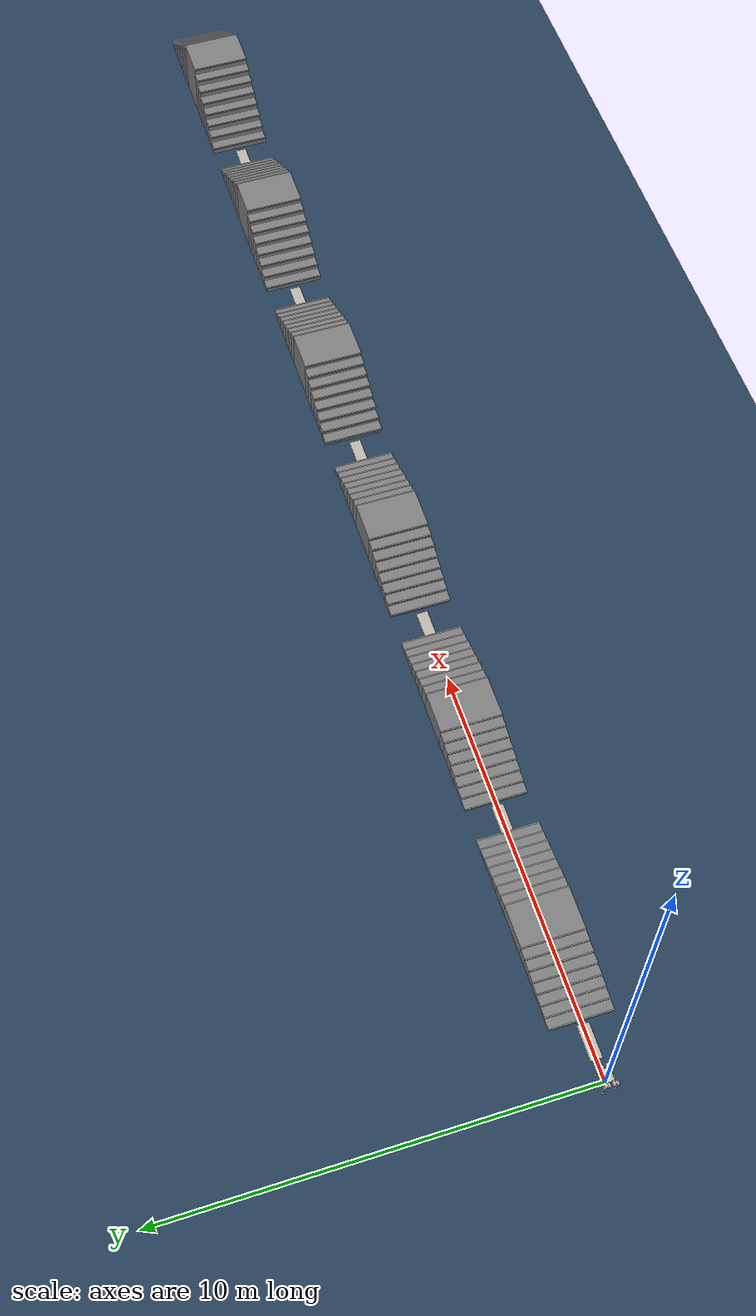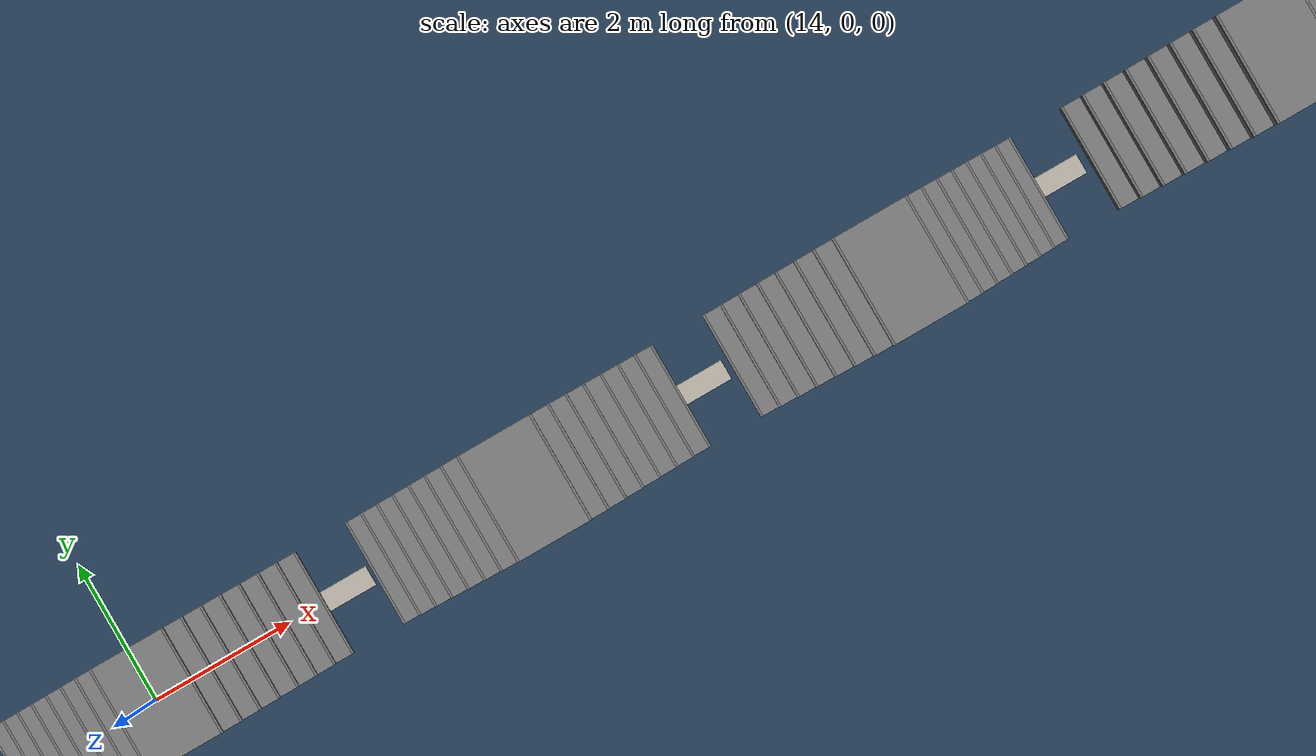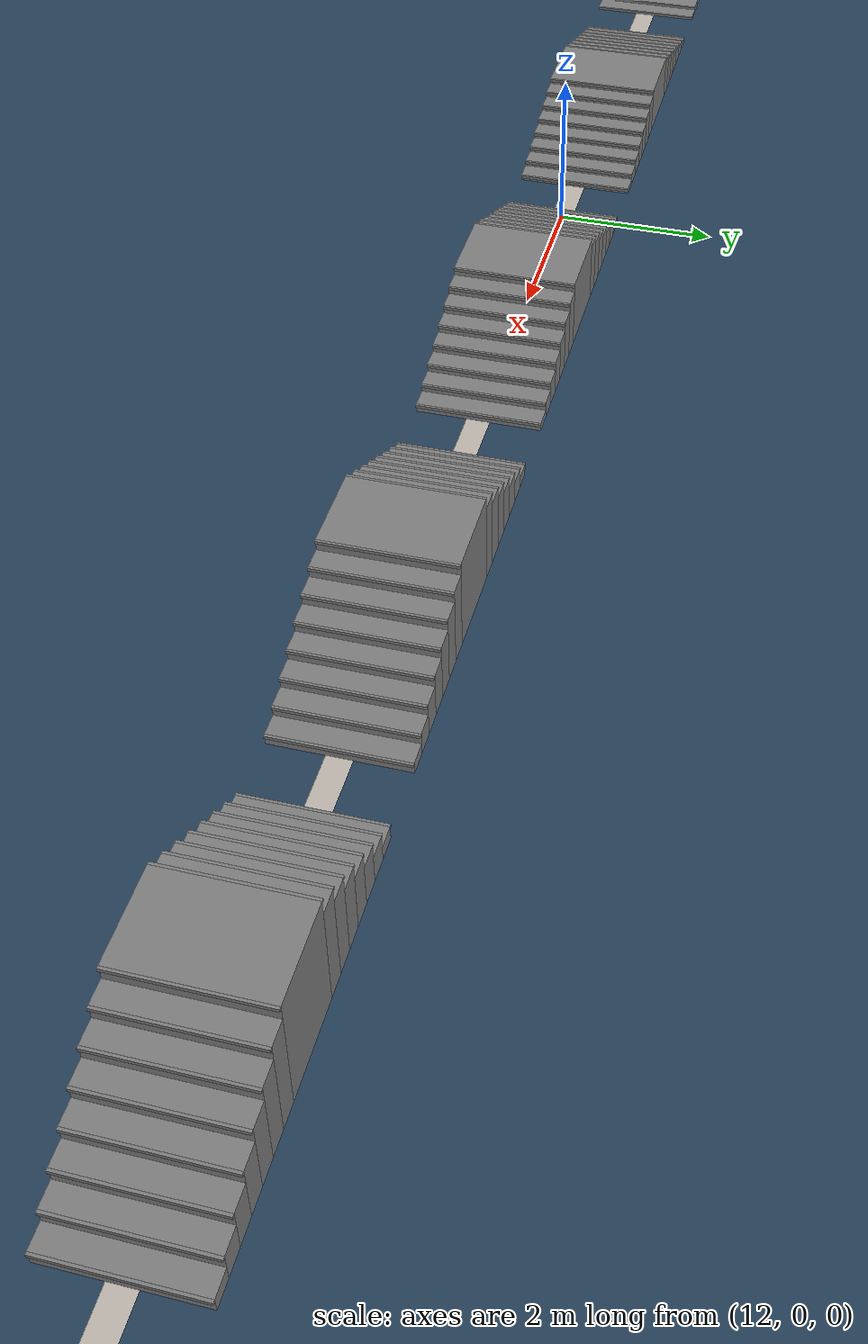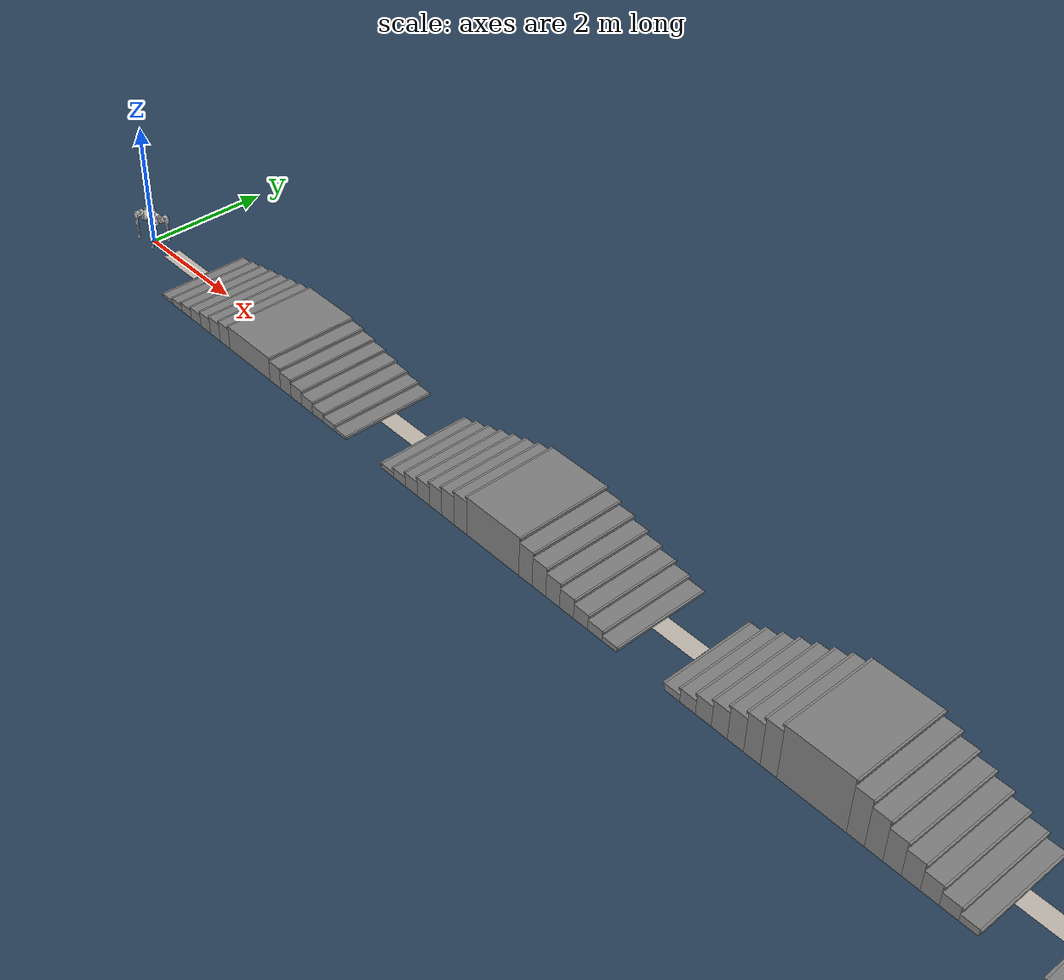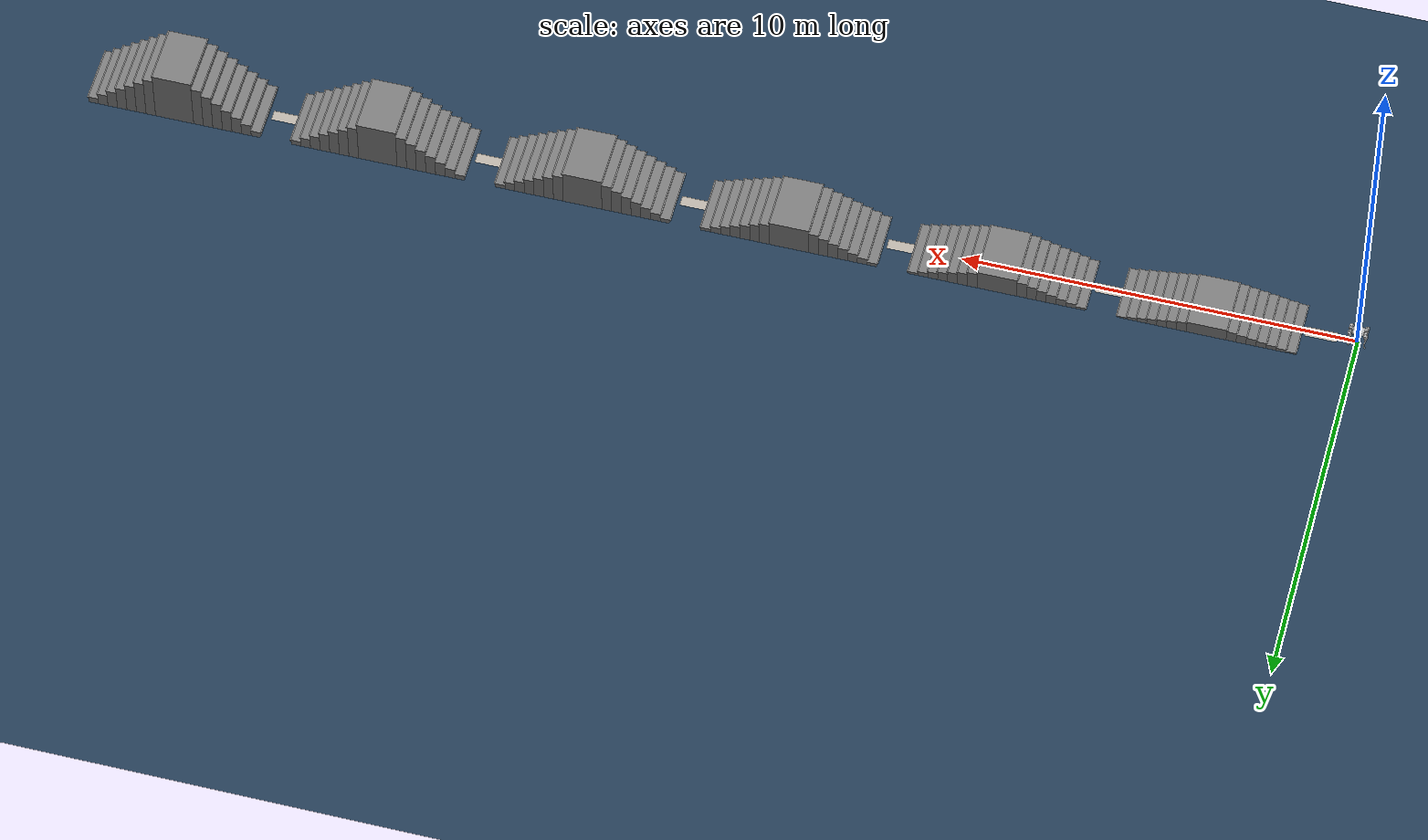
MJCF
<mujoco model="TOE_dog4.5 narrow stairs 25cm">
  <include file="dog.xml" />
  <!-- Eight risers per side, 0.25 m tread depth plus 0.03 m nosing, 0.035 m nosing height. -->
  <statistic center="16.5 0 0.8" extent="18" />
  <visual>
    <headlight diffuse="0.6 0.6 0.6" ambient="0.3 0.3 0.3" specular="0 0 0" />
    <rgba haze="0.15 0.25 0.35 1" />
    <global azimuth="-130" elevation="-20" />
  </visual>
  <asset>
    <texture type="skybox" builtin="gradient" rgb1="0.3 0.5 0.7" rgb2="0 0 0" width="512" height="3072" />
    <texture type="2d" name="groundplane" builtin="checker" mark="edge" rgb1="0.2 0.3 0.4" rgb2="0.1 0.2 0.3" markrgb="0.8 0.8 0.8" width="300" height="300" />
    <material name="groundplane" texture="groundplane" texuniform="true" texrepeat="5 5" reflectance="0.0" />
    <texture name="tex_height_5cm" type="2d" file="./imgs/height_5cm.png" />
    <material name="mat_height_5cm" texture="tex_height_5cm" specular="0" shininess="0" emission="1" texrepeat="1 1" rgba="1 1 1 1" />
    <texture name="tex_height_8cm" type="2d" file="./imgs/height_8cm.png" />
    <material name="mat_height_8cm" texture="tex_height_8cm" specular="0" shininess="0" emission="1" texrepeat="1 1" rgba="1 1 1 1" />
    <texture name="tex_height_11cm" type="2d" file="./imgs/height_11cm.png" />
    <material name="mat_height_11cm" texture="tex_height_11cm" specular="0" shininess="0" emission="1" texrepeat="1 1" rgba="1 1 1 1" />
    <texture name="tex_height_14cm" type="2d" file="./imgs/height_14cm.png" />
    <material name="mat_height_14cm" texture="tex_height_14cm" specular="0" shininess="0" emission="1" texrepeat="1 1" rgba="1 1 1 1" />
    <texture name="tex_height_17cm" type="2d" file="./imgs/height_17cm.png" />
    <material name="mat_height_17cm" texture="tex_height_17cm" specular="0" shininess="0" emission="1" texrepeat="1 1" rgba="1 1 1 1" />
    <texture name="tex_height_20cm" type="2d" file="./imgs/height_20cm.png" />
    <material name="mat_height_20cm" texture="tex_height_20cm" specular="0" shininess="0" emission="1" texrepeat="1 1" rgba="1 1 1 1" />
  </asset>
  <worldbody>
    <light pos="0 0 3" dir="0 0 -1" directional="true" />
    <geom name="floor" size="0 0 0.05" type="plane" material="groundplane" />
    <!-- 5 cm riser group. -->
    <geom name="height_label_5cm" pos="0.9 0 0.002" type="box" size="0.4 0.14 0.0001" contype="0" conaffinity="0" group="1" material="mat_height_5cm" />
    <geom name="stair_5cm_up_1" pos="1.525 0 0.025" type="box" size="0.125 0.75 0.025" />
    <geom name="stair_nosing_5cm_up_1" pos="1.3855 0 0.0325" type="box" size="0.0155 0.75 0.0175" />
    <geom name="stair_5cm_up_2" pos="1.775 0 0.05" type="box" size="0.125 0.75 0.05" />
    <geom name="stair_nosing_5cm_up_2" pos="1.6355 0 0.0825" type="box" size="0.0155 0.75 0.0175" />
    <geom name="stair_5cm_up_3" pos="2.025 0 0.075" type="box" size="0.125 0.75 0.075" />
    <geom name="stair_nosing_5cm_up_3" pos="1.8855 0 0.1325" type="box" size="0.0155 0.75 0.0175" />
    <geom name="stair_5cm_up_4" pos="2.275 0 0.1" type="box" size="0.125 0.75 0.1" />
    <geom name="stair_nosing_5cm_up_4" pos="2.1355 0 0.1825" type="box" size="0.0155 0.75 0.0175" />
    <geom name="stair_5cm_up_5" pos="2.525 0 0.125" type="box" size="0.125 0.75 0.125" />
    <geom name="stair_nosing_5cm_up_5" pos="2.3855 0 0.2325" type="box" size="0.0155 0.75 0.0175" />
    <geom name="stair_5cm_up_6" pos="2.775 0 0.15" type="box" size="0.125 0.75 0.15" />
    <geom name="stair_nosing_5cm_up_6" pos="2.6355 0 0.2825" type="box" size="0.0155 0.75 0.0175" />
    <geom name="stair_5cm_up_7" pos="3.025 0 0.175" type="box" size="0.125 0.75 0.175" />
    <geom name="stair_nosing_5cm_up_7" pos="2.8855 0 0.3325" type="box" size="0.0155 0.75 0.0175" />
    <geom name="stair_5cm_platform" pos="3.65 0 0.2" type="box" size="0.5 0.75 0.2" />
    <geom name="stair_nosing_5cm_platform_up" pos="3.1355 0 0.3825" type="box" size="0.0155 0.75 0.0175" />
    <geom name="stair_nosing_5cm_platform_down" pos="4.1645 0 0.3825" type="box" size="0.0155 0.75 0.0175" />
    <geom name="stair_5cm_down_7" pos="4.275 0 0.175" type="box" size="0.125 0.75 0.175" />
    <geom name="stair_nosing_5cm_down_7" pos="4.4145 0 0.3325" type="box" size="0.0155 0.75 0.0175" />
    <geom name="stair_5cm_down_6" pos="4.525 0 0.15" type="box" size="0.125 0.75 0.15" />
    <geom name="stair_nosing_5cm_down_6" pos="4.6645 0 0.2825" type="box" size="0.0155 0.75 0.0175" />
    <geom name="stair_5cm_down_5" pos="4.775 0 0.125" type="box" size="0.125 0.75 0.125" />
    <geom name="stair_nosing_5cm_down_5" pos="4.9145 0 0.2325" type="box" size="0.0155 0.75 0.0175" />
    <geom name="stair_5cm_down_4" pos="5.025 0 0.1" type="box" size="0.125 0.75 0.1" />
    <geom name="stair_nosing_5cm_down_4" pos="5.1645 0 0.1825" type="box" size="0.0155 0.75 0.0175" />
    <geom name="stair_5cm_down_3" pos="5.275 0 0.075" type="box" size="0.125 0.75 0.075" />
    <geom name="stair_nosing_5cm_down_3" pos="5.4145 0 0.1325" type="box" size="0.0155 0.75 0.0175" />
    <geom name="stair_5cm_down_2" pos="5.525 0 0.05" type="box" size="0.125 0.75 0.05" />
    <geom name="stair_nosing_5cm_down_2" pos="5.6645 0 0.0825" type="box" size="0.0155 0.75 0.0175" />
    <geom name="stair_5cm_down_1" pos="5.775 0 0.025" type="box" size="0.125 0.75 0.025" />
    <geom name="stair_nosing_5cm_down_1" pos="5.9145 0 0.0325" type="box" size="0.0155 0.75 0.0175" />
    <!-- 8 cm riser group. -->
    <geom name="height_label_8cm" pos="6.2 0 0.002" type="box" size="0.4 0.14 0.0001" contype="0" conaffinity="0" group="1" material="mat_height_8cm" />
    <geom name="stair_8cm_up_1" pos="6.825 0 0.04" type="box" size="0.125 0.75 0.04" />
    <geom name="stair_nosing_8cm_up_1" pos="6.6855 0 0.0625" type="box" size="0.0155 0.75 0.0175" />
    <geom name="stair_8cm_up_2" pos="7.075 0 0.08" type="box" size="0.125 0.75 0.08" />
    <geom name="stair_nosing_8cm_up_2" pos="6.9355 0 0.1425" type="box" size="0.0155 0.75 0.0175" />
    <geom name="stair_8cm_up_3" pos="7.325 0 0.12" type="box" size="0.125 0.75 0.12" />
    <geom name="stair_nosing_8cm_up_3" pos="7.1855 0 0.2225" type="box" size="0.0155 0.75 0.0175" />
    <geom name="stair_8cm_up_4" pos="7.575 0 0.16" type="box" size="0.125 0.75 0.16" />
    <geom name="stair_nosing_8cm_up_4" pos="7.4355 0 0.3025" type="box" size="0.0155 0.75 0.0175" />
    <geom name="stair_8cm_up_5" pos="7.825 0 0.2" type="box" size="0.125 0.75 0.2" />
    <geom name="stair_nosing_8cm_up_5" pos="7.6855 0 0.3825" type="box" size="0.0155 0.75 0.0175" />
    <geom name="stair_8cm_up_6" pos="8.075 0 0.24" type="box" size="0.125 0.75 0.24" />
    <geom name="stair_nosing_8cm_up_6" pos="7.9355 0 0.4625" type="box" size="0.0155 0.75 0.0175" />
    <geom name="stair_8cm_up_7" pos="8.325 0 0.28" type="box" size="0.125 0.75 0.28" />
    <geom name="stair_nosing_8cm_up_7" pos="8.1855 0 0.5425" type="box" size="0.0155 0.75 0.0175" />
    <geom name="stair_8cm_platform" pos="8.95 0 0.32" type="box" size="0.5 0.75 0.32" />
    <geom name="stair_nosing_8cm_platform_up" pos="8.4355 0 0.6225" type="box" size="0.0155 0.75 0.0175" />
    <geom name="stair_nosing_8cm_platform_down" pos="9.4645 0 0.6225" type="box" size="0.0155 0.75 0.0175" />
    <geom name="stair_8cm_down_7" pos="9.575 0 0.28" type="box" size="0.125 0.75 0.28" />
    <geom name="stair_nosing_8cm_down_7" pos="9.7145 0 0.5425" type="box" size="0.0155 0.75 0.0175" />
    <geom name="stair_8cm_down_6" pos="9.825 0 0.24" type="box" size="0.125 0.75 0.24" />
    <geom name="stair_nosing_8cm_down_6" pos="9.9645 0 0.4625" type="box" size="0.0155 0.75 0.0175" />
    <geom name="stair_8cm_down_5" pos="10.075 0 0.2" type="box" size="0.125 0.75 0.2" />
    <geom name="stair_nosing_8cm_down_5" pos="10.2145 0 0.3825" type="box" size="0.0155 0.75 0.0175" />
    <geom name="stair_8cm_down_4" pos="10.325 0 0.16" type="box" size="0.125 0.75 0.16" />
    <geom name="stair_nosing_8cm_down_4" pos="10.4645 0 0.3025" type="box" size="0.0155 0.75 0.0175" />
    <geom name="stair_8cm_down_3" pos="10.575 0 0.12" type="box" size="0.125 0.75 0.12" />
    <geom name="stair_nosing_8cm_down_3" pos="10.7145 0 0.2225" type="box" size="0.0155 0.75 0.0175" />
    <geom name="stair_8cm_down_2" pos="10.825 0 0.08" type="box" size="0.125 0.75 0.08" />
    <geom name="stair_nosing_8cm_down_2" pos="10.9645 0 0.1425" type="box" size="0.0155 0.75 0.0175" />
    <geom name="stair_8cm_down_1" pos="11.075 0 0.04" type="box" size="0.125 0.75 0.04" />
    <geom name="stair_nosing_8cm_down_1" pos="11.2145 0 0.0625" type="box" size="0.0155 0.75 0.0175" />
    <!-- 11 cm riser group. -->
    <geom name="height_label_11cm" pos="11.5 0 0.002" type="box" size="0.4 0.14 0.0001" contype="0" conaffinity="0" group="1" material="mat_height_11cm" />
    <geom name="stair_11cm_up_1" pos="12.125 0 0.055" type="box" size="0.125 0.75 0.055" />
    <geom name="stair_nosing_11cm_up_1" pos="11.9855 0 0.0925" type="box" size="0.0155 0.75 0.0175" />
    <geom name="stair_11cm_up_2" pos="12.375 0 0.11" type="box" size="0.125 0.75 0.11" />
    <geom name="stair_nosing_11cm_up_2" pos="12.2355 0 0.2025" type="box" size="0.0155 0.75 0.0175" />
    <geom name="stair_11cm_up_3" pos="12.625 0 0.165" type="box" size="0.125 0.75 0.165" />
    <geom name="stair_nosing_11cm_up_3" pos="12.4855 0 0.3125" type="box" size="0.0155 0.75 0.0175" />
    <geom name="stair_11cm_up_4" pos="12.875 0 0.22" type="box" size="0.125 0.75 0.22" />
    <geom name="stair_nosing_11cm_up_4" pos="12.7355 0 0.4225" type="box" size="0.0155 0.75 0.0175" />
    <geom name="stair_11cm_up_5" pos="13.125 0 0.275" type="box" size="0.125 0.75 0.275" />
    <geom name="stair_nosing_11cm_up_5" pos="12.9855 0 0.5325" type="box" size="0.0155 0.75 0.0175" />
    <geom name="stair_11cm_up_6" pos="13.375 0 0.33" type="box" size="0.125 0.75 0.33" />
    <geom name="stair_nosing_11cm_up_6" pos="13.2355 0 0.6425" type="box" size="0.0155 0.75 0.0175" />
    <geom name="stair_11cm_up_7" pos="13.625 0 0.385" type="box" size="0.125 0.75 0.385" />
    <geom name="stair_nosing_11cm_up_7" pos="13.4855 0 0.7525" type="box" size="0.0155 0.75 0.0175" />
    <geom name="stair_11cm_platform" pos="14.25 0 0.44" type="box" size="0.5 0.75 0.44" />
    <geom name="stair_nosing_11cm_platform_up" pos="13.7355 0 0.8625" type="box" size="0.0155 0.75 0.0175" />
    <geom name="stair_nosing_11cm_platform_down" pos="14.7645 0 0.8625" type="box" size="0.0155 0.75 0.0175" />
    <geom name="stair_11cm_down_7" pos="14.875 0 0.385" type="box" size="0.125 0.75 0.385" />
    <geom name="stair_nosing_11cm_down_7" pos="15.0145 0 0.7525" type="box" size="0.0155 0.75 0.0175" />
    <geom name="stair_11cm_down_6" pos="15.125 0 0.33" type="box" size="0.125 0.75 0.33" />
    <geom name="stair_nosing_11cm_down_6" pos="15.2645 0 0.6425" type="box" size="0.0155 0.75 0.0175" />
    <geom name="stair_11cm_down_5" pos="15.375 0 0.275" type="box" size="0.125 0.75 0.275" />
    <geom name="stair_nosing_11cm_down_5" pos="15.5145 0 0.5325" type="box" size="0.0155 0.75 0.0175" />
    <geom name="stair_11cm_down_4" pos="15.625 0 0.22" type="box" size="0.125 0.75 0.22" />
    <geom name="stair_nosing_11cm_down_4" pos="15.7645 0 0.4225" type="box" size="0.0155 0.75 0.0175" />
    <geom name="stair_11cm_down_3" pos="15.875 0 0.165" type="box" size="0.125 0.75 0.165" />
    <geom name="stair_nosing_11cm_down_3" pos="16.0145 0 0.3125" type="box" size="0.0155 0.75 0.0175" />
    <geom name="stair_11cm_down_2" pos="16.125 0 0.11" type="box" size="0.125 0.75 0.11" />
    <geom name="stair_nosing_11cm_down_2" pos="16.2645 0 0.2025" type="box" size="0.0155 0.75 0.0175" />
    <geom name="stair_11cm_down_1" pos="16.375 0 0.055" type="box" size="0.125 0.75 0.055" />
    <geom name="stair_nosing_11cm_down_1" pos="16.5145 0 0.0925" type="box" size="0.0155 0.75 0.0175" />
    <!-- 14 cm riser group. -->
    <geom name="height_label_14cm" pos="16.8 0 0.002" type="box" size="0.4 0.14 0.0001" contype="0" conaffinity="0" group="1" material="mat_height_14cm" />
    <geom name="stair_14cm_up_1" pos="17.425 0 0.07" type="box" size="0.125 0.75 0.07" />
    <geom name="stair_nosing_14cm_up_1" pos="17.2855 0 0.1225" type="box" size="0.0155 0.75 0.0175" />
    <geom name="stair_14cm_up_2" pos="17.675 0 0.14" type="box" size="0.125 0.75 0.14" />
    <geom name="stair_nosing_14cm_up_2" pos="17.5355 0 0.2625" type="box" size="0.0155 0.75 0.0175" />
    <geom name="stair_14cm_up_3" pos="17.925 0 0.21" type="box" size="0.125 0.75 0.21" />
    <geom name="stair_nosing_14cm_up_3" pos="17.7855 0 0.4025" type="box" size="0.0155 0.75 0.0175" />
    <geom name="stair_14cm_up_4" pos="18.175 0 0.28" type="box" size="0.125 0.75 0.28" />
    <geom name="stair_nosing_14cm_up_4" pos="18.0355 0 0.5425" type="box" size="0.0155 0.75 0.0175" />
    <geom name="stair_14cm_up_5" pos="18.425 0 0.35" type="box" size="0.125 0.75 0.35" />
    <geom name="stair_nosing_14cm_up_5" pos="18.2855 0 0.6825" type="box" size="0.0155 0.75 0.0175" />
    <geom name="stair_14cm_up_6" pos="18.675 0 0.42" type="box" size="0.125 0.75 0.42" />
    <geom name="stair_nosing_14cm_up_6" pos="18.5355 0 0.8225" type="box" size="0.0155 0.75 0.0175" />
    <geom name="stair_14cm_up_7" pos="18.925 0 0.49" type="box" size="0.125 0.75 0.49" />
    <geom name="stair_nosing_14cm_up_7" pos="18.7855 0 0.9625" type="box" size="0.0155 0.75 0.0175" />
    <geom name="stair_14cm_platform" pos="19.55 0 0.56" type="box" size="0.5 0.75 0.56" />
    <geom name="stair_nosing_14cm_platform_up" pos="19.0355 0 1.1025" type="box" size="0.0155 0.75 0.0175" />
    <geom name="stair_nosing_14cm_platform_down" pos="20.0645 0 1.1025" type="box" size="0.0155 0.75 0.0175" />
    <geom name="stair_14cm_down_7" pos="20.175 0 0.49" type="box" size="0.125 0.75 0.49" />
    <geom name="stair_nosing_14cm_down_7" pos="20.3145 0 0.9625" type="box" size="0.0155 0.75 0.0175" />
    <geom name="stair_14cm_down_6" pos="20.425 0 0.42" type="box" size="0.125 0.75 0.42" />
    <geom name="stair_nosing_14cm_down_6" pos="20.5645 0 0.8225" type="box" size="0.0155 0.75 0.0175" />
    <geom name="stair_14cm_down_5" pos="20.675 0 0.35" type="box" size="0.125 0.75 0.35" />
    <geom name="stair_nosing_14cm_down_5" pos="20.8145 0 0.6825" type="box" size="0.0155 0.75 0.0175" />
    <geom name="stair_14cm_down_4" pos="20.925 0 0.28" type="box" size="0.125 0.75 0.28" />
    <geom name="stair_nosing_14cm_down_4" pos="21.0645 0 0.5425" type="box" size="0.0155 0.75 0.0175" />
    <geom name="stair_14cm_down_3" pos="21.175 0 0.21" type="box" size="0.125 0.75 0.21" />
    <geom name="stair_nosing_14cm_down_3" pos="21.3145 0 0.4025" type="box" size="0.0155 0.75 0.0175" />
    <geom name="stair_14cm_down_2" pos="21.425 0 0.14" type="box" size="0.125 0.75 0.14" />
    <geom name="stair_nosing_14cm_down_2" pos="21.5645 0 0.2625" type="box" size="0.0155 0.75 0.0175" />
    <geom name="stair_14cm_down_1" pos="21.675 0 0.07" type="box" size="0.125 0.75 0.07" />
    <geom name="stair_nosing_14cm_down_1" pos="21.8145 0 0.1225" type="box" size="0.0155 0.75 0.0175" />
    <!-- 17 cm riser group. -->
    <geom name="height_label_17cm" pos="22.1 0 0.002" type="box" size="0.4 0.14 0.0001" contype="0" conaffinity="0" group="1" material="mat_height_17cm" />
    <geom name="stair_17cm_up_1" pos="22.725 0 0.085" type="box" size="0.125 0.75 0.085" />
    <geom name="stair_nosing_17cm_up_1" pos="22.5855 0 0.1525" type="box" size="0.0155 0.75 0.0175" />
    <geom name="stair_17cm_up_2" pos="22.975 0 0.17" type="box" size="0.125 0.75 0.17" />
    <geom name="stair_nosing_17cm_up_2" pos="22.8355 0 0.3225" type="box" size="0.0155 0.75 0.0175" />
    <geom name="stair_17cm_up_3" pos="23.225 0 0.255" type="box" size="0.125 0.75 0.255" />
    <geom name="stair_nosing_17cm_up_3" pos="23.0855 0 0.4925" type="box" size="0.0155 0.75 0.0175" />
    <geom name="stair_17cm_up_4" pos="23.475 0 0.34" type="box" size="0.125 0.75 0.34" />
    <geom name="stair_nosing_17cm_up_4" pos="23.3355 0 0.6625" type="box" size="0.0155 0.75 0.0175" />
    <geom name="stair_17cm_up_5" pos="23.725 0 0.425" type="box" size="0.125 0.75 0.425" />
    <geom name="stair_nosing_17cm_up_5" pos="23.5855 0 0.8325" type="box" size="0.0155 0.75 0.0175" />
    <geom name="stair_17cm_up_6" pos="23.975 0 0.51" type="box" size="0.125 0.75 0.51" />
    <geom name="stair_nosing_17cm_up_6" pos="23.8355 0 1.0025" type="box" size="0.0155 0.75 0.0175" />
    <geom name="stair_17cm_up_7" pos="24.225 0 0.595" type="box" size="0.125 0.75 0.595" />
    <geom name="stair_nosing_17cm_up_7" pos="24.0855 0 1.1725" type="box" size="0.0155 0.75 0.0175" />
    <geom name="stair_17cm_platform" pos="24.85 0 0.68" type="box" size="0.5 0.75 0.68" />
    <geom name="stair_nosing_17cm_platform_up" pos="24.3355 0 1.3425" type="box" size="0.0155 0.75 0.0175" />
    <geom name="stair_nosing_17cm_platform_down" pos="25.3645 0 1.3425" type="box" size="0.0155 0.75 0.0175" />
    <geom name="stair_17cm_down_7" pos="25.475 0 0.595" type="box" size="0.125 0.75 0.595" />
    <geom name="stair_nosing_17cm_down_7" pos="25.6145 0 1.1725" type="box" size="0.0155 0.75 0.0175" />
    <geom name="stair_17cm_down_6" pos="25.725 0 0.51" type="box" size="0.125 0.75 0.51" />
    <geom name="stair_nosing_17cm_down_6" pos="25.8645 0 1.0025" type="box" size="0.0155 0.75 0.0175" />
    <geom name="stair_17cm_down_5" pos="25.975 0 0.425" type="box" size="0.125 0.75 0.425" />
    <geom name="stair_nosing_17cm_down_5" pos="26.1145 0 0.8325" type="box" size="0.0155 0.75 0.0175" />
    <geom name="stair_17cm_down_4" pos="26.225 0 0.34" type="box" size="0.125 0.75 0.34" />
    <geom name="stair_nosing_17cm_down_4" pos="26.3645 0 0.6625" type="box" size="0.0155 0.75 0.0175" />
    <geom name="stair_17cm_down_3" pos="26.475 0 0.255" type="box" size="0.125 0.75 0.255" />
    <geom name="stair_nosing_17cm_down_3" pos="26.6145 0 0.4925" type="box" size="0.0155 0.75 0.0175" />
    <geom name="stair_17cm_down_2" pos="26.725 0 0.17" type="box" size="0.125 0.75 0.17" />
    <geom name="stair_nosing_17cm_down_2" pos="26.8645 0 0.3225" type="box" size="0.0155 0.75 0.0175" />
    <geom name="stair_17cm_down_1" pos="26.975 0 0.085" type="box" size="0.125 0.75 0.085" />
    <geom name="stair_nosing_17cm_down_1" pos="27.1145 0 0.1525" type="box" size="0.0155 0.75 0.0175" />
    <!-- 20 cm riser group. -->
    <geom name="height_label_20cm" pos="27.4 0 0.002" type="box" size="0.4 0.14 0.0001" contype="0" conaffinity="0" group="1" material="mat_height_20cm" />
    <geom name="stair_20cm_up_1" pos="28.025 0 0.1" type="box" size="0.125 0.75 0.1" />
    <geom name="stair_nosing_20cm_up_1" pos="27.8855 0 0.1825" type="box" size="0.0155 0.75 0.0175" />
    <geom name="stair_20cm_up_2" pos="28.275 0 0.2" type="box" size="0.125 0.75 0.2" />
    <geom name="stair_nosing_20cm_up_2" pos="28.1355 0 0.3825" type="box" size="0.0155 0.75 0.0175" />
    <geom name="stair_20cm_up_3" pos="28.525 0 0.3" type="box" size="0.125 0.75 0.3" />
    <geom name="stair_nosing_20cm_up_3" pos="28.3855 0 0.5825" type="box" size="0.0155 0.75 0.0175" />
    <geom name="stair_20cm_up_4" pos="28.775 0 0.4" type="box" size="0.125 0.75 0.4" />
    <geom name="stair_nosing_20cm_up_4" pos="28.6355 0 0.7825" type="box" size="0.0155 0.75 0.0175" />
    <geom name="stair_20cm_up_5" pos="29.025 0 0.5" type="box" size="0.125 0.75 0.5" />
    <geom name="stair_nosing_20cm_up_5" pos="28.8855 0 0.9825" type="box" size="0.0155 0.75 0.0175" />
    <geom name="stair_20cm_up_6" pos="29.275 0 0.6" type="box" size="0.125 0.75 0.6" />
    <geom name="stair_nosing_20cm_up_6" pos="29.1355 0 1.1825" type="box" size="0.0155 0.75 0.0175" />
    <geom name="stair_20cm_up_7" pos="29.525 0 0.7" type="box" size="0.125 0.75 0.7" />
    <geom name="stair_nosing_20cm_up_7" pos="29.3855 0 1.3825" type="box" size="0.0155 0.75 0.0175" />
    <geom name="stair_20cm_platform" pos="30.15 0 0.8" type="box" size="0.5 0.75 0.8" />
    <geom name="stair_nosing_20cm_platform_up" pos="29.6355 0 1.5825" type="box" size="0.0155 0.75 0.0175" />
    <geom name="stair_nosing_20cm_platform_down" pos="30.6645 0 1.5825" type="box" size="0.0155 0.75 0.0175" />
    <geom name="stair_20cm_down_7" pos="30.775 0 0.7" type="box" size="0.125 0.75 0.7" />
    <geom name="stair_nosing_20cm_down_7" pos="30.9145 0 1.3825" type="box" size="0.0155 0.75 0.0175" />
    <geom name="stair_20cm_down_6" pos="31.025 0 0.6" type="box" size="0.125 0.75 0.6" />
    <geom name="stair_nosing_20cm_down_6" pos="31.1645 0 1.1825" type="box" size="0.0155 0.75 0.0175" />
    <geom name="stair_20cm_down_5" pos="31.275 0 0.5" type="box" size="0.125 0.75 0.5" />
    <geom name="stair_nosing_20cm_down_5" pos="31.4145 0 0.9825" type="box" size="0.0155 0.75 0.0175" />
    <geom name="stair_20cm_down_4" pos="31.525 0 0.4" type="box" size="0.125 0.75 0.4" />
    <geom name="stair_nosing_20cm_down_4" pos="31.6645 0 0.7825" type="box" size="0.0155 0.75 0.0175" />
    <geom name="stair_20cm_down_3" pos="31.775 0 0.3" type="box" size="0.125 0.75 0.3" />
    <geom name="stair_nosing_20cm_down_3" pos="31.9145 0 0.5825" type="box" size="0.0155 0.75 0.0175" />
    <geom name="stair_20cm_down_2" pos="32.025 0 0.2" type="box" size="0.125 0.75 0.2" />
    <geom name="stair_nosing_20cm_down_2" pos="32.1645 0 0.3825" type="box" size="0.0155 0.75 0.0175" />
    <geom name="stair_20cm_down_1" pos="32.275 0 0.1" type="box" size="0.125 0.75 0.1" />
    <geom name="stair_nosing_20cm_down_1" pos="32.4145 0 0.1825" type="box" size="0.0155 0.75 0.0175" />
  </worldbody>
</mujoco>

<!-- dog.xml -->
<mujoco model="TOE_dog4.5">
  <compiler angle="radian" meshdir="../stl" autolimits="true" />

  <option cone="elliptic" impratio="100" />

  <default>
    <default class="dog">
      <geom friction="0.4" margin="0.001" condim="1"/>
      <joint axis="0 1 0" damping="0.1" armature="0.01" frictionloss="0.2"/>
      <motor ctrlrange="-20 20"/>
      <default class="abduction">
        <joint axis="1 0 0" range="-1 1"/>
      </default>
      <default class="hip">
        <joint range="-1.5 2.5"/>
      </default>
      <default class="knee">
        <joint range="-2.7 -0.8"/>
        <motor ctrlrange="-30 30"/>
      </default>
      <default class="visual">
        <geom type="mesh" contype="0" conaffinity="0" group="1"/>
      </default>
      <default class="collision">
        <geom group="3" contype="1" conaffinity="0"/>
        <default class="foot">
          <geom size="0.022" pos="-0.00129629 0 -0.21118" priority="1" condim="6" friction="0.9 0.02 0.01"/>
        </default>
      </default>
    </default>
  </default>

  <asset>
    <mesh name="base_link" file="base_link.STL"/>
    <mesh name="L_hip" file="L_hip.STL"/>
    <mesh name="L_thigh" file="L_thigh.STL"/>
    <mesh name="L_calf" file="L_calf.STL"/>
    <mesh name="foot" file="foot.STL"/>
    <mesh name="R_hip" file="R_hip.STL"/>
    <mesh name="R_thigh" file="R_thigh.STL"/>
    <mesh name="R_calf" file="R_calf.STL"/>
  </asset>

  <worldbody>
    <body name="base_link" pos="0 0 0.45" childclass="dog">
    <freejoint name="root"/>
    <inertial pos="0.00295211474088308 -0.00192758854859915 -0.0102792040045774" quat="-0.000543471 0.713435 -0.00173769 0.700719"
        mass="5.835083" diaginertia="0.068111 0.056604 0.025133" />
    <geom pos="-0.19 0.1154 -0.09" quat="0.707388 0 0 -0.706825" type="mesh" density="0" rgba="0.752941 0.752941 0.752941 1" mesh="base_link" contype="0" conaffinity="0" group="1"/>

    <geom size="0.135 0.115 0.06" type="box" rgba="1 1 1 1" class="collision"/>

    <site name='imu' size='0.01' pos='0.0 0 0.0'/>

    <body name="FL_hip" pos="0.2 0.05655 0">
      <inertial pos="-0.0070649 0.00658511 0.000124398" quat="0.495949 0.477547 0.517443 0.508169" mass="0.905192" diaginertia="0.00122102 0.00104387 0.000894103"/>
      <joint name="FL_hip_joint" pos="0 0 0" axis="1 0 0" range="-1 1" actuatorfrcrange="-20 20"/>
      <geom type="mesh" density="0" rgba="0.752941 0.752941 0.752941 1" mesh="L_hip" class="visual"/>
      <geom size="0.047 0.045" pos="0 0.05 0" quat="0.707107 0.707107 0 0" type="capsule" rgba="0.752941 0.752941 0.752941 1" class="collision"/>
      <body name="FL_thigh" pos="0 0.09375 0">
        <inertial pos="-0.00135206 -0.0159552 -0.030433" quat="0.699015 0.0668645 -0.0433449 0.710653" mass="1.1875" diaginertia="0.00485748 0.0046312 0.00105732"/>
        <joint name="FL_thigh_joint" pos="0 0 0" axis="0 1 0" range="-1.5 2.5" actuatorfrcrange="-20 20"/>
        <geom type="mesh" density="0" rgba="0.752941 0.752941 0.752941 1" mesh="L_thigh" class="visual"/>
        <geom size="0.055 0.01225 0.017" pos="0 0 -0.1065" quat="0.707107 0 0.707107 0" type="box" rgba="0.752941 0.752941 0.752941 1" class="collision"/>
        <body name="FL_calf" pos="0 0 -0.2">
          <inertial pos="0.006517 -0.000033 -0.106783" quat="1 0 0 0" mass="0.228394" diaginertia="0.00162529 0.00164186 0.00003857"/>
          <joint name="FL_calf_joint" pos="0 0 0" axis="0 1 0" range="-2.7 -0.8" actuatorfrcrange="-30 30"/>
          <geom type="mesh" density="0" rgba="0.752941 0.752941 0.752941 1" mesh="L_calf" class="visual"/>
          <geom size="0.012 0.06" pos="0.008 0 -0.05" quat="0.994493 0 -0.104807 0" type="capsule" rgba="0.752941 0.752941 0.752941 1" class="collision"/>
          <geom size="0.011 0.0325" pos="0.0198362 0 -0.138388" quat="0.999688 0 0.0249974 0" type="capsule" class="collision"/>
          <geom size="0.0155 0.015" pos="0.0134257 0 -0.182499" quat="0.965093 0 0.261909 0" type="capsule" class="collision"/>
          <geom pos="0.00070371 0 -0.21118" quat="1 0 0 0" type="mesh" density="0" rgba="1 1 1 1" mesh="foot" class="visual"/>
          <geom name="FL_foot" size="0.022" pos="-0.00129629 0 -0.21118" rgba="1 1 1 1" class="foot"/>
        </body>
      </body>
    </body>

    <body name="FR_hip" pos="0.2 -0.05655 0">
      <inertial pos="-0.0070649 -0.00658511 -0.000124398" quat="0.517443 0.508169 0.495949 0.477547" mass="0.905192" diaginertia="0.00122102 0.00104387 0.000894103"/>
      <joint name="FR_hip_joint" pos="0 0 0" axis="1 0 0" range="-1 1" actuatorfrcrange="-20 20"/>
      <geom quat="2.14617e-09 4.63268e-05 4.63268e-05 -1" type="mesh" density="0" rgba="0.752941 0.752941 0.752941 1" mesh="R_hip" class="visual"/>
      <geom size="0.047 0.045" pos="0 -0.05 0" quat="0.707107 0.707107 0 0" type="capsule" rgba="0.752941 0.752941 0.752941 1" class="collision"/>
      <body name="FR_thigh" pos="0 -0.09375 0">
        <inertial pos="-0.00109949 0.0159537 -0.0304843" quat="0.710653 -0.0433449 0.0668645 0.699015" mass="1.1875" diaginertia="0.00485748 0.0046312 0.00105732"/>
        <joint name="FR_thigh_joint" pos="0 0 0" axis="0 1 0" range="-1.5 2.5" actuatorfrcrange="-20 20"/>
        <geom type="mesh" density="0" rgba="0.752941 0.752941 0.752941 1" mesh="R_thigh" class="visual"/>
        <geom size="0.055 0.01225 0.017" pos="0 0 -0.1065" quat="0.707107 0 0.707107 0" type="box" rgba="0.752941 0.752941 0.752941 1" class="collision"/>
        <body name="FR_calf" pos="0 0 -0.2">
          <inertial pos="0.006517 -0.000033 -0.106783" quat="1 0 0 0" mass="0.228394" diaginertia="0.00162529 0.00164186 0.00003857"/>
          <joint name="FR_calf_joint" pos="0 0 0" axis="0 1 0" range="-2.7 -0.8" actuatorfrcrange="-30 30"/>
          <geom type="mesh" density="0" rgba="0.752941 0.752941 0.752941 1" mesh="R_calf" class="visual"/>
          <geom size="0.012 0.06" pos="0.008 0 -0.05" quat="0.994493 0 -0.104807 0" type="capsule" rgba="0.752941 0.752941 0.752941 1" class="collision"/>
          <geom size="0.011 0.0325" pos="0.020336 0 -0.1384" quat="0.999688 0 0.0249974 0" type="capsule" class="collision"/>
          <geom size="0.0155 0.015" pos="0.0161382 0 -0.182777" quat="0.971338 0 0.237703 0" type="capsule" class="collision"/>
          <geom pos="0.00070371 0 -0.21118" quat="1 0 0 0" type="mesh" density="0" rgba="1 1 1 1" mesh="foot" class="visual"/>
          <geom name="FR_foot" size="0.022" pos="-0.00129629 0 -0.21118" rgba="1 1 1 1" class="foot"/>
        </body>
      </body>
    </body>

    <body name="RL_hip" pos="-0.2 0.05655 0">
      <inertial pos="0.0070649 0.00658511 -0.000124398" quat="0.508169 0.517443 0.477547 0.495949" mass="0.905192" diaginertia="0.00122102 0.00104387 0.000894103"/>
      <joint name="RL_hip_joint" pos="0 0 0" axis="1 0 0" range="-1 1" actuatorfrcrange="-20 20"/>
      <geom quat="4.63268e-05 0 1 0" type="mesh" density="0" rgba="0.752941 0.752941 0.752941 1" mesh="L_hip" class="visual"/>
      <geom size="0.047 0.045" pos="0 0.05 0" quat="0.707107 0.707107 0 0" type="capsule" rgba="0.752941 0.752941 0.752941 1" class="collision"/>
      <body name="RL_thigh" pos="0 0.09375 0">
        <inertial pos="-0.00135206 -0.0159552 -0.030433" quat="0.699015 0.0668645 -0.0433449 0.710653" mass="1.1875" diaginertia="0.00485748 0.0046312 0.00105732"/>
        <joint name="RL_thigh_joint" pos="0 0 0" axis="0 1 0" range="-1.5 2.5" actuatorfrcrange="-20 20"/>
        <geom type="mesh" density="0" rgba="0.752941 0.752941 0.752941 1" mesh="L_thigh" class="visual"/>
        <geom size="0.055 0.01225 0.017" pos="0 0 -0.1065" quat="0.707107 0 0.707107 0" type="box" rgba="0.752941 0.752941 0.752941 1" class="collision"/>
        <body name="RL_calf" pos="0 0 -0.2">
          <inertial pos="0.006517 -0.000033 -0.106783" quat="1 0 0 0" mass="0.228394" diaginertia="0.00162529 0.00164186 0.00003857"/>
          <joint name="RL_calf_joint" pos="0 0 0" axis="0 1 0" range="-2.7 -0.8" actuatorfrcrange="-30 30"/>
          <geom type="mesh" density="0" rgba="0.752941 0.752941 0.752941 1" mesh="L_calf" class="visual"/>
          <geom size="0.012 0.06" pos="0.008 0 -0.05" quat="0.994493 0 -0.104807 0" type="capsule" rgba="0.752941 0.752941 0.752941 1" class="collision"/>
          <geom size="0.011 0.0325" pos="0.020336 0 -0.1384" quat="0.999688 0 0.0249974 0" type="capsule" class="collision"/>
          <geom size="0.0155 0.015" pos="0.0161382 0 -0.182777" quat="0.971338 0 0.237703 0" type="capsule" class="collision"/>
          <geom pos="0.00070371 0 -0.21118" quat="1 0 0 0" type="mesh" density="0" rgba="1 1 1 1" mesh="foot" class="visual"/>
          <geom name="RL_foot" size="0.022" pos="-0.00129629 0 -0.21118" rgba="1 1 1 1" class="foot"/>
        </body>
      </body>
    </body>

    <body name="RR_hip" pos="-0.2 -0.05655 0">
      <inertial pos="0.0070649 -0.00658511 0.000124398" quat="0.477547 0.495949 0.508169 0.517443" mass="0.905192" diaginertia="0.00122102 0.00104387 0.000894103"/>
      <joint name="RR_hip_joint" pos="0 0 0" axis="1 0 0" range="-1 1" actuatorfrcrange="-20 20"/>
      <geom quat="4.63268e-05 1 0 0" type="mesh" density="0" rgba="0.752941 0.752941 0.752941 1" mesh="R_hip" class="visual"/>
      <geom size="0.047 0.045" pos="0 -0.05 0" quat="0.707107 0.707107 0 0" type="capsule" rgba="0.752941 0.752941 0.752941 1" class="collision"/>
      <body name="RR_thigh" pos="0 -0.09375 0">
        <inertial pos="-0.00109949 0.0159537 -0.0304843" quat="0.710653 -0.0433449 0.0668645 0.699015" mass="1.1875" diaginertia="0.00485748 0.0046312 0.00105732"/>
        <joint name="RR_thigh_joint" pos="0 0 0" axis="0 1 0" range="-1.5 2.5" actuatorfrcrange="-20 20"/>
        <geom type="mesh" density="0" rgba="0.752941 0.752941 0.752941 1" mesh="R_thigh" class="visual"/>
        <geom size="0.055 0.01225 0.017" pos="0 0 -0.1065" quat="0.707107 0 0.707107 0" type="box" rgba="0.752941 0.752941 0.752941 1" class="collision"/>
        <body name="RR_calf" pos="0 0 -0.2">
          <inertial pos="0.006517 -0.000033 -0.106783" quat="1 0 0 0" mass="0.228394" diaginertia="0.00162529 0.00164186 0.00003857"/>
          <joint name="RR_calf_joint" pos="0 0 0" axis="0 1 0" range="-2.7 -0.8" actuatorfrcrange="-30 30"/>
          <geom type="mesh" density="0" rgba="0.752941 0.752941 0.752941 1" mesh="R_calf" class="visual"/>
          <geom size="0.012 0.06" pos="0.008 0 -0.05" quat="0.994493 0 -0.104807 0" type="capsule" rgba="0.752941 0.752941 0.752941 1" class="collision"/>
          <geom size="0.011 0.0325" pos="0.020336 0 -0.1384" quat="0.999688 0 0.0249974 0" type="capsule" class="collision"/>
          <geom size="0.0155 0.015" pos="0.0161382 0 -0.182777" quat="0.971338 0 0.237703 0" type="capsule" class="collision"/>
          <geom pos="0.00070371 0 -0.21118" quat="1 0 0 0" type="mesh" density="0" rgba="1 1 1 1" mesh="foot" class="visual"/>
          <geom name="RR_foot" size="0.022" pos="-0.00129629 0 -0.21118" rgba="1 1 1 1" class="foot"/>
        </body>
      </body>
    </body>

    </body>
  </worldbody>

  <actuator>
    <motor name="FL_hip_joint" joint="FL_hip_joint" gear="1" ctrllimited="true" ctrlrange="-20 20"/>
    <motor name="FL_thigh_joint" joint="FL_thigh_joint" gear="1" ctrllimited="true" ctrlrange="-20 20"/>
    <motor name="FL_calf_joint" joint="FL_calf_joint" gear="1" ctrllimited="true" ctrlrange="-30 30"/>

    <motor name="FR_hip_joint" joint="FR_hip_joint" gear="1" ctrllimited="true" ctrlrange="-20 20"/>
    <motor name="FR_thigh_joint" joint="FR_thigh_joint" gear="1" ctrllimited="true" ctrlrange="-20 20"/>
    <motor name="FR_calf_joint" joint="FR_calf_joint" gear="1" ctrllimited="true" ctrlrange="-30 30"/>

    <motor name="RL_hip_joint" joint="RL_hip_joint" gear="1" ctrllimited="true" ctrlrange="-20 20"/>
    <motor name="RL_thigh_joint" joint="RL_thigh_joint" gear="1" ctrllimited="true" ctrlrange="-20 20"/>
    <motor name="RL_calf_joint" joint="RL_calf_joint" gear="1" ctrllimited="true" ctrlrange="-30 30"/>

    <motor name="RR_hip_joint" joint="RR_hip_joint" gear="1" ctrllimited="true" ctrlrange="-20 20"/>
    <motor name="RR_thigh_joint" joint="RR_thigh_joint" gear="1" ctrllimited="true" ctrlrange="-20 20"/>
    <motor name="RR_calf_joint" joint="RR_calf_joint" gear="1" ctrllimited="true" ctrlrange="-30 30"/>
  </actuator>

  <sensor>
    <jointpos name="FL_hip_pos" joint="FL_hip_joint" />
    <jointpos name="FL_thigh_pos" joint="FL_thigh_joint" />
    <jointpos name="FL_calf_pos" joint="FL_calf_joint" />
    <jointpos name="FR_hip_pos" joint="FR_hip_joint" />
    <jointpos name="FR_thigh_pos" joint="FR_thigh_joint" />
    <jointpos name="FR_calf_pos" joint="FR_calf_joint" />
    <jointpos name="RL_hip_pos" joint="RL_hip_joint" />
    <jointpos name="RL_thigh_pos" joint="RL_thigh_joint" />
    <jointpos name="RL_calf_pos" joint="RL_calf_joint" />
    <jointpos name="RR_hip_pos" joint="RR_hip_joint" />
    <jointpos name="RR_thigh_pos" joint="RR_thigh_joint" />
    <jointpos name="RR_calf_pos" joint="RR_calf_joint" />

    <jointvel name="FL_hip_vel" joint="FL_hip_joint" />
    <jointvel name="FL_thigh_vel" joint="FL_thigh_joint" />
    <jointvel name="FL_calf_vel" joint="FL_calf_joint" />
    <jointvel name="FR_hip_vel" joint="FR_hip_joint" />
    <jointvel name="FR_thigh_vel" joint="FR_thigh_joint" />
    <jointvel name="FR_calf_vel" joint="FR_calf_joint" />
    <jointvel name="RL_hip_vel" joint="RL_hip_joint" />
    <jointvel name="RL_thigh_vel" joint="RL_thigh_joint" />
    <jointvel name="RL_calf_vel" joint="RL_calf_joint" />
    <jointvel name="RR_hip_vel" joint="RR_hip_joint" />
    <jointvel name="RR_thigh_vel" joint="RR_thigh_joint" />
    <jointvel name="RR_calf_vel" joint="RR_calf_joint" />

    <jointactuatorfrc name="FL_hip_torque" joint="FL_hip_joint" noise="0.01" />
    <jointactuatorfrc name="FL_thigh_torque" joint="FL_thigh_joint" noise="0.01" />
    <jointactuatorfrc name="FL_calf_torque" joint="FL_calf_joint" noise="0.01" />
    <jointactuatorfrc name="FR_hip_torque" joint="FR_hip_joint" noise="0.01" />
    <jointactuatorfrc name="FR_thigh_torque" joint="FR_thigh_joint" noise="0.01" />
    <jointactuatorfrc name="FR_calf_torque" joint="FR_calf_joint" noise="0.01" />
    <jointactuatorfrc name="RL_hip_torque" joint="RL_hip_joint" noise="0.01" />
    <jointactuatorfrc name="RL_thigh_torque" joint="RL_thigh_joint" noise="0.01" />
    <jointactuatorfrc name="RL_calf_torque" joint="RL_calf_joint" noise="0.01" />
    <jointactuatorfrc name="RR_hip_torque" joint="RR_hip_joint" noise="0.01" />
    <jointactuatorfrc name="RR_thigh_torque" joint="RR_thigh_joint" noise="0.01" />
    <jointactuatorfrc name="RR_calf_torque" joint="RR_calf_joint" noise="0.01" />

    <framequat     name='orientation' objtype='site' noise='0.001' objname='imu'/>
    <framepos      name='position' objtype='site' noise='0.001' objname='imu'/>
    <framelinvel  name="base_lin_vel" objtype="site" objname="imu" />
    <gyro          name='angular-velocity'    site='imu' noise='0.005' cutoff='34.9'/>
    <velocimeter   name='linear-velocity'     site='imu' noise='0.001' cutoff='30'/>
    <accelerometer name='linear-acceleration' site='imu' noise='0.005' cutoff='157'/>
    <magnetometer  name='magnetometer'        site='imu'/>
  </sensor>

  <keyframe>
    <key name="home" qpos="0 0 0.27 1 0 0 0 0 0.9 -1.8 0 0.9 -1.8 0 0.9 -1.8 0 0.9 -1.8"
      ctrl="0 0.9 -1.8 0 0.9 -1.8 0 0.9 -1.8 0 0.9 -1.8" />
  </keyframe>
</mujoco>
